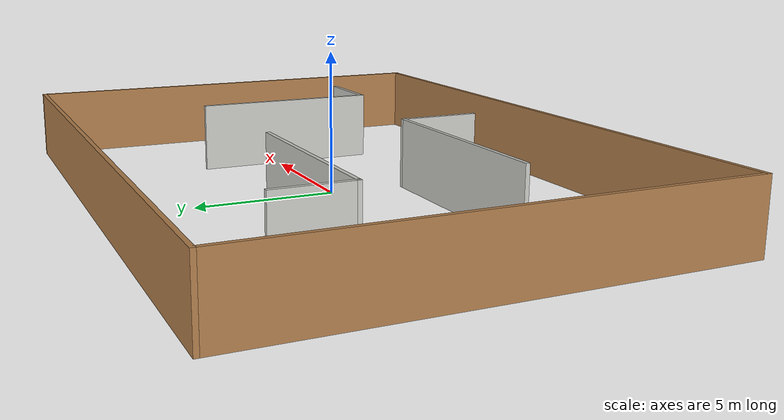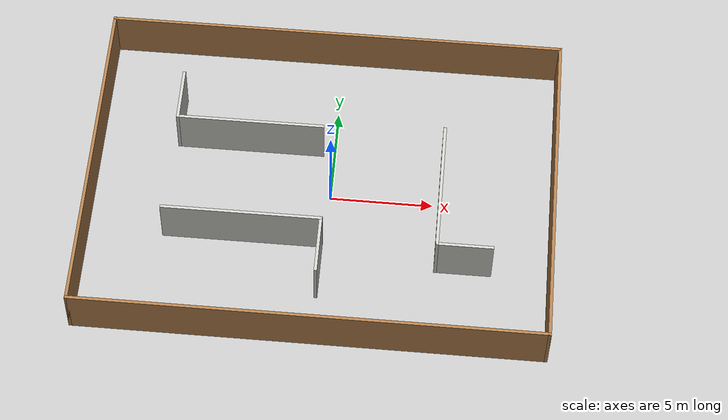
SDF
<?xml version='1.0'?>
<sdf version='1.7'>
  <model name='New_Maze'>
    <pose>-0.411605 0.075297 0 0 -0 0</pose>
    <link name='Wall_10'>
      <collision name='Wall_10_Collision'>
        <geometry>
          <box>
            <size>2.75 0.15 2.5</size>
          </box>
        </geometry>
        <pose>0 0 1.25 0 -0 0</pose>
      </collision>
      <visual name='Wall_10_Visual'>
        <pose>0 0 1.25 0 -0 0</pose>
        <geometry>
          <box>
            <size>2.75 0.15 2.5</size>
          </box>
        </geometry>
        <material>
          <script>
            <uri>file://media/materials/scripts/gazebo.material</uri>
            <name>Gazebo/CeilingTiled</name>
          </script>
          <ambient>1 1 1 1</ambient>
        </material>
        <meta>
          <layer>0</layer>
        </meta>
      </visual>
      <pose>7.04196 -3.75635 0 0 -0 0</pose>
    </link>
    <link name='Wall_12'>
      <collision name='Wall_12_Collision'>
        <geometry>
          <box>
            <size>3 0.15 2.5</size>
          </box>
        </geometry>
        <pose>0 0 1.25 0 -0 0</pose>
      </collision>
      <visual name='Wall_12_Visual'>
        <pose>0 0 1.25 0 -0 0</pose>
        <geometry>
          <box>
            <size>3 0.15 2.5</size>
          </box>
        </geometry>
        <material>
          <script>
            <uri>file://media/materials/scripts/gazebo.material</uri>
            <name>Gazebo/CeilingTiled</name>
          </script>
          <ambient>1 1 1 1</ambient>
        </material>
        <meta>
          <layer>0</layer>
        </meta>
      </visual>
      <pose>0.177704 -4.23825 0 0 -0 1.5708</pose>
    </link>
    <link name='Wall_13'>
      <collision name='Wall_13_Collision'>
        <geometry>
          <box>
            <size>7.75 0.15 2.5</size>
          </box>
        </geometry>
        <pose>0 0 1.25 0 -0 0</pose>
      </collision>
      <visual name='Wall_13_Visual'>
        <pose>0 0 1.25 0 -0 0</pose>
        <geometry>
          <box>
            <size>7.75 0.15 2.5</size>
          </box>
        </geometry>
        <material>
          <script>
            <uri>file://media/materials/scripts/gazebo.material</uri>
            <name>Gazebo/CeilingTiled</name>
          </script>
          <ambient>1 1 1 1</ambient>
        </material>
        <meta>
          <layer>0</layer>
        </meta>
      </visual>
      <pose>-3.6223 -2.81325 0 0 -0 3.14159</pose>
    </link>
    <link name='Wall_15'>
      <collision name='Wall_15_Collision'>
        <geometry>
          <box>
            <size>7.25 0.15 2.5</size>
          </box>
        </geometry>
        <pose>0 0 1.25 0 -0 0</pose>
      </collision>
      <visual name='Wall_15_Visual'>
        <pose>0 0 1.25 0 -0 0</pose>
        <geometry>
          <box>
            <size>7.25 0.15 2.5</size>
          </box>
        </geometry>
        <material>
          <script>
            <uri>file://media/materials/scripts/gazebo.material</uri>
            <name>Gazebo/CeilingTiled</name>
          </script>
          <ambient>1 1 1 1</ambient>
        </material>
        <meta>
          <layer>0</layer>
        </meta>
      </visual>
      <pose>-3.74681 2.46913 0 0 -0 3.14159</pose>
    </link>
    <link name='Wall_16'>
      <collision name='Wall_16_Collision'>
        <geometry>
          <box>
            <size>2.75 0.15 2.5</size>
          </box>
        </geometry>
        <pose>0 0 1.25 0 -0 0</pose>
      </collision>
      <visual name='Wall_16_Visual'>
        <pose>0 0 1.25 0 -0 0</pose>
        <geometry>
          <box>
            <size>2.75 0.15 2.5</size>
          </box>
        </geometry>
        <material>
          <script>
            <uri>file://media/materials/scripts/gazebo.material</uri>
            <name>Gazebo/CeilingTiled</name>
          </script>
          <ambient>1 1 1 1</ambient>
        </material>
        <meta>
          <layer>0</layer>
        </meta>
      </visual>
      <pose>-7.29681 3.76913 0 0 -0 1.5708</pose>
    </link>
    <link name='Wall_4'>
      <collision name='Wall_4_Collision'>
        <geometry>
          <box>
            <size>22.5 0.15 2.5</size>
          </box>
        </geometry>
        <pose>0 0 1.25 0 -0 0</pose>
      </collision>
      <visual name='Wall_4_Visual'>
        <pose>0 0 1.25 0 -0 0</pose>
        <geometry>
          <box>
            <size>22.5 0.15 2.5</size>
          </box>
        </geometry>
        <material>
          <script>
            <uri>file://media/materials/scripts/gazebo.material</uri>
            <name>Gazebo/Wood</name>
          </script>
          <ambient>1 1 1 1</ambient>
        </material>
        <meta>
          <layer>0</layer>
        </meta>
      </visual>
      <pose>0 -8.175 0 0 -0 0</pose>
    </link>
    <link name='Wall_5'>
      <collision name='Wall_5_Collision'>
        <geometry>
          <box>
            <size>16.5 0.15 2.5</size>
          </box>
        </geometry>
        <pose>0 0 1.25 0 -0 0</pose>
      </collision>
      <visual name='Wall_5_Visual'>
        <pose>0 0 1.25 0 -0 0</pose>
        <geometry>
          <box>
            <size>16.5 0.15 2.5</size>
          </box>
        </geometry>
        <material>
          <script>
            <uri>file://media/materials/scripts/gazebo.material</uri>
            <name>Gazebo/Wood</name>
          </script>
          <ambient>1 1 1 1</ambient>
        </material>
        <meta>
          <layer>0</layer>
        </meta>
      </visual>
      <pose>11.175 0 0 0 -0 1.5708</pose>
    </link>
    <link name='Wall_6'>
      <collision name='Wall_6_Collision'>
        <geometry>
          <box>
            <size>22.5 0.15 2.5</size>
          </box>
        </geometry>
        <pose>0 0 1.25 0 -0 0</pose>
      </collision>
      <visual name='Wall_6_Visual'>
        <pose>0 0 1.25 0 -0 0</pose>
        <geometry>
          <box>
            <size>22.5 0.15 2.5</size>
          </box>
        </geometry>
        <material>
          <script>
            <uri>file://media/materials/scripts/gazebo.material</uri>
            <name>Gazebo/Wood</name>
          </script>
          <ambient>1 1 1 1</ambient>
        </material>
        <meta>
          <layer>0</layer>
        </meta>
      </visual>
      <pose>0 8.175 0 0 -0 3.14159</pose>
    </link>
    <link name='Wall_7'>
      <collision name='Wall_7_Collision'>
        <geometry>
          <box>
            <size>16.5 0.15 2.5</size>
          </box>
        </geometry>
        <pose>0 0 1.25 0 -0 0</pose>
      </collision>
      <visual name='Wall_7_Visual'>
        <pose>0 0 1.25 0 -0 0</pose>
        <geometry>
          <box>
            <size>16.5 0.15 2.5</size>
          </box>
        </geometry>
        <material>
          <script>
            <uri>file://media/materials/scripts/gazebo.material</uri>
            <name>Gazebo/Wood</name>
          </script>
          <ambient>1 1 1 1</ambient>
        </material>
        <meta>
          <layer>0</layer>
        </meta>
      </visual>
      <pose>-11.175 0 0 0 -0 -1.5708</pose>
    </link>
    <link name='Wall_9'>
      <collision name='Wall_9_Collision'>
        <geometry>
          <box>
            <size>6.75 0.15 2.5</size>
          </box>
        </geometry>
        <pose>0 0 1.25 0 -0 0</pose>
      </collision>
      <visual name='Wall_9_Visual'>
        <pose>0 0 1.25 0 -0 0</pose>
        <geometry>
          <box>
            <size>6.75 0.15 2.5</size>
          </box>
        </geometry>
        <material>
          <script>
            <uri>file://media/materials/scripts/gazebo.material</uri>
            <name>Gazebo/CeilingTiled</name>
          </script>
          <ambient>1 1 1 1</ambient>
        </material>
        <meta>
          <layer>0</layer>
        </meta>
      </visual>
      <pose>5.74196 -0.456353 0 0 -0 -1.5708</pose>
    </link>
    <static>1</static>
  </model>
</sdf>
